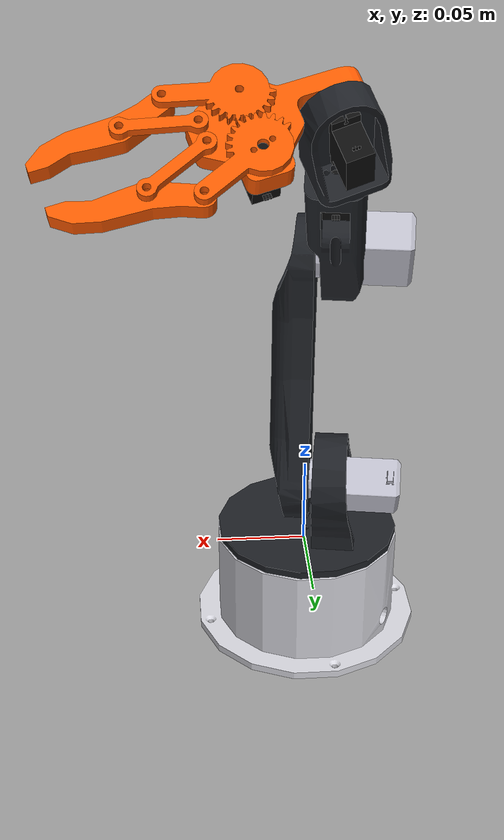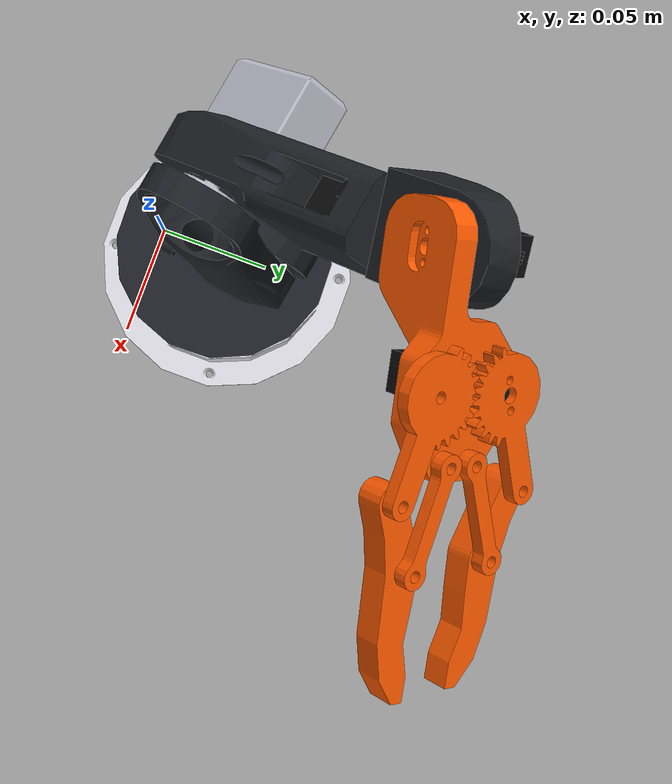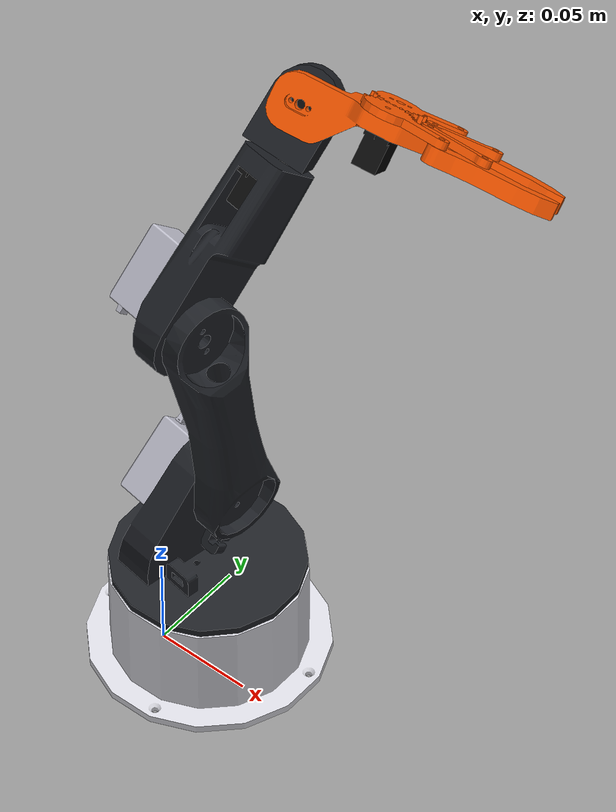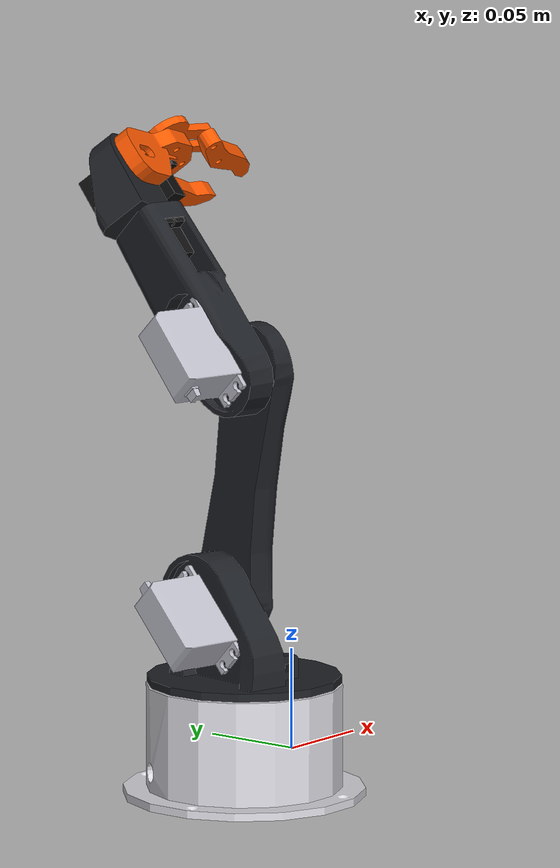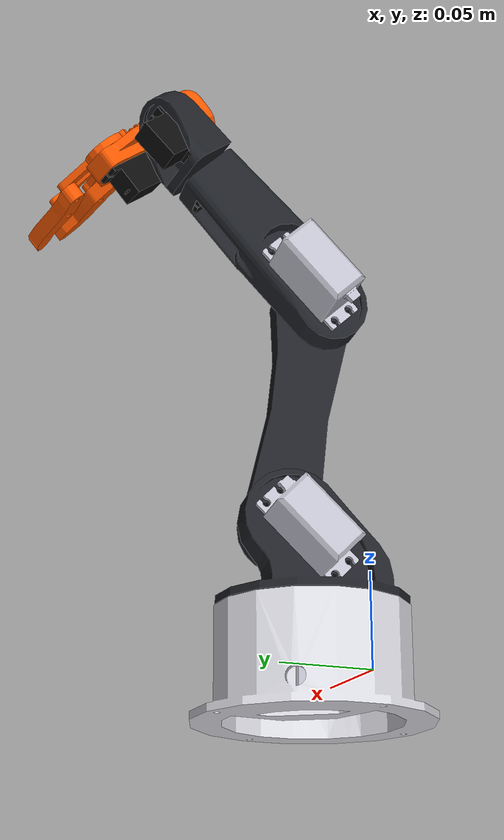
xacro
<?xml version="1.0"?>
<robot xmlns:xacro="http://www.ros.org/wiki/xacro" name="arm_robot">
    <xacro:arg name="initial_positions_file" default="initial_positions.yaml" />

    <!-- Import arm_robot urdf file -->
    <xacro:include filename="$(find robotic_arm_description)/urdf/arm_robot.urdf" />

    <!-- Import control_xacro -->
    <xacro:include filename="arm_robot.ros2_control.xacro" />

    <xacro:arm_robot_ros2_control name="FakeSystem" initial_positions_file="$(arg initial_positions_file)"/>

</robot>

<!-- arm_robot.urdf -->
<!--URDF organized perfectly into sequential subsystems-->
<robot name="arm_robot">

  <!-- 1. ROOT & BASE STRUCTURE                 -->
  <link name="root" />
  <joint name="fixed_node_to_root_joint_0" type="fixed">
          <origin xyz="-0.0386083 0.124405 -0.0639913" rpy="5.80768e-15 4.80471e-17 9.38306e-31" />
          <axis xyz="0 0 1" />
          <parent link="root" />
          <child link="base" />
      </joint>
  <link name="base">
          <inertial>
              <mass value="0.101031" />
              <origin xyz="0.0406816 -0.0928149 0.0584112" rpy="0 -0 0" />
              <inertia ixx="0.000137746" ixy="4.68146e-06" ixz="-3.43353e-06" iyy="0.000141721" iyz="2.2726e-06" izz="0.000218799" />
          </inertial>
          <visual>
              <origin xyz="0 0 0" rpy="0 -0 0" />
              <geometry>
                  <mesh filename="package://robotic_arm_description/meshes/Base.stl" scale="1 1 1" />
              </geometry>
              <material name="0.937255_0.941176_0.945098_0.000000_0.000000">
                  <texture />
                  <color rgba="0.85 0.85 0.88 1" />
              </material>
          </visual>
      </link>

  <!-- 2. WAIST MECHANISM                       -->
  <joint name="fastened_1_4" type="fixed">
          <origin xyz="0.032073 -0.081121 0.0741076" rpy="-5.67254e-17 -2.1343e-15 3.60822e-16" />
          <axis xyz="1.94764e-15 2.81325e-15 1" />
          <parent link="base" />
          <child link="servo_motor_mg996r" />
      </joint>
  <link name="servo_motor_mg996r">
          <inertial>
              <mass value="0.0356215" />
              <origin xyz="0.0168551 -0.0171522 -0.00843485" rpy="0 -0 0" />
              <inertia ixx="7.34339e-06" ixy="1.80523e-06" ixz="2.44862e-07" iyy="8.87594e-06" iyz="-1.62071e-07" izz="6.32908e-06" />
          </inertial>
          <visual>
              <origin xyz="-0.032073 0.081121 -0.0741076" rpy="0 -0 0" />
              <geometry>
                  <mesh filename="package://robotic_arm_description/meshes/Servo Motor MG996R.stl" scale="1 1 1" />
              </geometry>
              <material name="0.352941_0.352941_0.352941_0.000000_0.000000">
                  <texture />
                  <color rgba="0.75 0.75 0.80 1" />
              </material>
          </visual>
      </link>
  <joint name="waist_joint" type="revolute">
          <origin xyz="0.00870625 -0.0117586 0.0186" rpy="-2.445e-15 3.21117e-15 1.23743" />
          <axis xyz="1.38613e-16 3.26282e-15 1" />
          <limit lower="-1.5708" upper="1.5708" effort="10.0" velocity="3.14" />
          <parent link="servo_motor_mg996r" />
          <child link="waist" />
      </joint>
  <link name="waist">
          <inertial>
              <mass value="0.0715763" />
              <origin xyz="0.00027228 0.0065737 0.0172896" rpy="0 -0 0" />
              <inertia ixx="4.79742e-05" ixy="-2.92128e-06" ixz="-5.56079e-06" iyy="6.05465e-05" iyz="-6.47243e-06" izz="5.75198e-05" />
          </inertial>
          <visual>
              <origin xyz="-0.0407793 0.0928796 -0.0931076" rpy="0 -0 0" />
              <geometry>
                  <mesh filename="package://robotic_arm_description/meshes/Waist.stl" scale="1 1 1" />
              </geometry>
              <material name="0.082353_0.376471_0.745098_0.000000_0.000000">
                  <texture />
                  <color rgba="0.12 0.13 0.15 1" />
              </material>
          </visual>
      </link>

  <!-- 3. SHOULDER & UPPER ARM                  -->
  <joint name="fastened_1_3" type="fixed">
          <origin xyz="0.0167974 0.0211208 0.0535347" rpy="3.13405e-16 8.72205e-17 -2.22045e-16" />
          <axis xyz="-0.167932 0.985799 2.8727e-15" />
          <parent link="waist" />
          <child link="servo_motor_mg996r_1" />
      </joint>
  <link name="servo_motor_mg996r_1">
          <inertial>
              <mass value="0.0356215" />
              <origin xyz="-0.0147306 0.00848155 -0.0201682" rpy="0 -0 0" />
              <inertia ixx="7.99071e-06" ixy="4.90695e-07" ixz="-1.96815e-06" iyy="6.44804e-06" iyz="-1.24651e-07" izz="8.10967e-06" />
          </inertial>
          <visual>
              <origin xyz="-0.0574024 0.0717885 -0.146819" rpy="0 -0 0" />
              <geometry>
                  <mesh filename="package://robotic_arm_description/meshes/Servo Motor MG996R_1.stl" scale="1 1 1" />
              </geometry>
              <material name="0.352941_0.352941_0.352941_0.000000_0.000000">
                  <texture />
                  <color rgba="0.75 0.75 0.80 1" />
              </material>
          </visual>
      </link>
  <joint name="shoulder_joint" type="revolute">
          <origin xyz="-0.00337881 -0.017009 -0.0132583" rpy="-0.00880207 0.0516235 -0.000227249" />
          <axis xyz="0.167932 -0.985799 -3.41609e-15" />
          <limit lower="-1.0472" upper="1.0472" effort="10.0" velocity="3.14" />
          <parent link="servo_motor_mg996r_1" />
          <child link="arm_01" />
      </joint>
  <link name="arm_01">
          <inertial>
              <mass value="0.0672108" />
              <origin xyz="-0.0101921 -0.00963787 0.0580444" rpy="0 -0 0" />
              <inertia ixx="0.00010883" ixy="-1.45286e-06" ixz="1.96592e-05" iyy="0.00011741" iyz="3.099e-06" izz="1.35739e-05" />
          </inertial>
          <visual>
              <origin xyz="-0.0540236 0.0887974 -0.133561" rpy="0 -0 0" />
              <geometry>
                  <mesh filename="package://robotic_arm_description/meshes/Arm 01.stl" scale="1 1 1" />
              </geometry>
              <material name="0.082353_0.376471_0.745098_0.000000_0.000000">
                  <texture />
                  <color rgba="0.12 0.13 0.15 1" />
              </material>
          </visual>
      </link>
  <joint name="fastened_1_0" type="fixed">
          <origin xyz="0.00108524 -0.00637058 -2.91434e-16" rpy="-8.67362e-19 -6.93889e-18 2.87856e-17" />
          <axis xyz="-0.167932 0.985799 3.41609e-15" />
          <parent link="arm_01" />
          <child link="arm_01_1" />
      </joint>
  <link name="arm_01_1">
          <inertial>
              <mass value="0.000649482" />
              <origin xyz="-0.0124353 -0.00165935 -0.0229608" rpy="0 -0 0" />
              <inertia ixx="1.18358e-08" ixy="3.56348e-10" ixz="-1.62432e-09" iyy="8.0687e-09" iyz="-8.10603e-10" izz="9.6144e-09" />
          </inertial>
          <visual>
              <origin xyz="-0.0549472 0.0942193 -0.133561" rpy="0 -0 0" />
              <geometry>
                  <mesh filename="package://robotic_arm_description/meshes/Arm 01_1.stl" scale="1 1 1" />
              </geometry>
              <material name="0.082353_0.376471_0.745098_0.000000_0.000000">
                  <texture />
                  <color rgba="0.12 0.13 0.15 1" />
              </material>
          </visual>
      </link>

  <!-- 4. ELBOW & FOREARM                       -->
  <joint name="elbow_joint" type="revolute">
          <origin xyz="-0.0233091 -0.00397075 0.117647" rpy="0.228615 -0.926223 -0.114529" />
          <axis xyz="0.167932 -0.985799 -3.02015e-15" />
          <limit lower="-1.2217" upper="1.2217" effort="10.0" velocity="3.14" />
          <parent link="arm_01" />
          <child link="servo_motor_mg996r_2" />
      </joint>
  <link name="servo_motor_mg996r_2">
          <inertial>
              <mass value="0.0356215" />
              <origin xyz="0.0050744 0.0282888 -0.000612193" rpy="0 -0 0" />
              <inertia ixx="6.26562e-06" ixy="-3.03874e-07" ixz="2.38663e-07" iyy="6.22739e-06" iyz="5.93172e-08" izz="1.00554e-05" />
          </inertial>
          <visual>
              <origin xyz="-0.0307144 0.0927682 -0.251208" rpy="0 -0 0" />
              <geometry>
                  <mesh filename="package://robotic_arm_description/meshes/Servo Motor MG996R_2.stl" scale="1 1 1" />
              </geometry>
              <material name="0.352941_0.352941_0.352941_0.000000_0.000000">
                  <texture />
                  <color rgba="0.75 0.75 0.80 1" />
              </material>
          </visual>
      </link>
  <joint name="fastened_1_2" type="fixed">
          <origin xyz="0.0312856 0.0217629 0.00284453" rpy="-2.85882e-15 4.996e-16 1.36696e-15" />
          <axis xyz="-0.167932 0.985799 2.65368e-15" />
          <parent link="servo_motor_mg996r_2" />
          <child link="arm_02_v3" />
      </joint>
  <link name="arm_02_v3">
          <inertial>
              <mass value="0.0528829" />
              <origin xyz="0.00558634 -0.00472001 -0.00527772" rpy="0 -0 0" />
              <inertia ixx="1.14925e-05" ixy="-8.76515e-06" ixz="2.86344e-06" iyy="5.96286e-05" iyz="5.06883e-07" izz="5.72625e-05" />
          </inertial>
          <visual>
              <origin xyz="-0.0620154 0.0710026 -0.254302" rpy="0 -0 0" />
              <geometry>
                  <mesh filename="package://robotic_arm_description/meshes/Arm 02 v3.stl" scale="1 1 1" />
              </geometry>
              <material name="0.082353_0.376471_0.745098_0.000000_0.000000">
                  <texture />
                  <color rgba="0.12 0.13 0.15 1" />
              </material>
          </visual>
      </link>

  <!-- 5. WRIST MECHANISMS (ROLL & PITCH)       -->
  <joint name="fastened_2_0" type="fixed">
          <origin xyz="0.0445283 0.00200623 -0.0216135" rpy="-1.62386 -1.50802 0.221897" />
          <axis xyz="0 1 0" />
          <parent link="arm_02_v3" />
          <child link="servo_motor" />
      </joint>
  <link name="servo_motor">
          <inertial>
              <mass value="0.00749909" />
              <origin xyz="0.0133719 -0.00553916 -9.90986e-20" rpy="0 -0 0" />
              <inertia ixx="4.81958e-07" ixy="3.76599e-08" ixz="0" iyy="4.49862e-07" iyz="0" izz="7.44587e-07" />
          </inertial>
          <visual>
              <origin xyz="0.0138 -0.01805 0" rpy="0 -0 0" />
              <geometry>
                  <mesh filename="package://robotic_arm_description/meshes/Servo Motor.stl" scale="1 1 1" />
              </geometry>
              <material name="0.301961_0.301961_0.301961_0.000000_0.000000">
                  <texture />
                  <color rgba="0.05 0.05 0.05 1" />
              </material>
          </visual>
      </link>
  <joint name="wrist_roll_joint" type="revolute">
          <origin xyz="0.0087 0.01185 6.76542e-17" rpy="0.240602 -0.0212445 1.39215" />
          <axis xyz="0.983862 0.167602 -0.0626468" />
          <limit lower="-1.5708" upper="1.5708" effort="3.0" velocity="5.0" />
          <parent link="servo_motor" />
          <child link="arm_03" />
      </joint>
  <link name="arm_03">
          <inertial>
              <mass value="0.0173574" />
              <origin xyz="0.0188285 -0.00304012 0.00277914" rpy="0 -0 0" />
              <inertia ixx="2.63992e-06" ixy="1.61309e-07" ixz="1.84822e-07" iyy="5.36981e-06" iyz="2.193e-07" izz="4.13772e-06" />
          </inertial>
          <visual>
              <origin xyz="-0.118727 0.0669209 -0.24043" rpy="0 -0 0" />
              <geometry>
                  <mesh filename="package://robotic_arm_description/meshes/Arm 03.stl" scale="1 1 1" />
              </geometry>
              <material name="0.082353_0.376471_0.745098_0.000000_0.000000">
                  <texture />
                  <color rgba="0.12 0.13 0.15 1" />
              </material>
          </visual>
      </link>
  <joint name="fastened_1_1" type="fixed">
          <origin xyz="0.0100537 -0.00277107 0.00362407" rpy="-0.199177 -0.0636488 -2.97267" />
          <axis xyz="0 1 0" />
          <parent link="arm_03" />
          <child link="servo_motor_2" />
      </joint>
  <link name="servo_motor_2">
          <inertial>
              <mass value="0.00749909" />
              <origin xyz="-0.0142281 -0.00553916 -9.90986e-20" rpy="0 -0 0" />
              <inertia ixx="4.81958e-07" ixy="3.76599e-08" ixz="0" iyy="4.49862e-07" iyz="0" izz="7.44587e-07" />
          </inertial>
          <visual>
              <origin xyz="-0.0138 -0.01805 0" rpy="0 -0 0" />
              <geometry>
                  <mesh filename="package://robotic_arm_description/meshes/Servo Motor.stl" scale="1 1 1" />
              </geometry>
              <material name="0.301961_0.301961_0.301961_0.000000_0.000000">
                  <texture />
                  <color rgba="0.05 0.05 0.05 1" />
              </material>
          </visual>
      </link>
  <joint name="wrist_pitch_joint" type="revolute">
          <origin xyz="-0.0189 0.01185 2.08167e-17" rpy="3.03987 1.68615e-15 -1.5708" />
          <axis xyz="-1 1.23909e-16 0" />
          <limit lower="-1.5708" upper="1.5708" effort="3.0" velocity="5.0" />
          <parent link="servo_motor_2" />
          <child link="gripper_base" />
      </joint>
  <link name="gripper_base">
          <inertial>
              <mass value="0.0230141" />
              <origin xyz="0.0017005 0.00597594 0.0263357" rpy="0 -0 0" />
              <inertia ixx="1.10919e-05" ixy="-4.47723e-07" ixz="-1.84715e-06" iyy="1.24503e-05" iyz="-1.85622e-06" izz="3.57441e-06" />
          </inertial>
          <visual>
              <origin xyz="-0.014 0.009 0.063" rpy="0 -0 0" />
              <geometry>
                  <mesh filename="package://robotic_arm_description/meshes/Gripper Base.stl" scale="1 1 1" />
              </geometry>
              <material name="0.305882_0.596078_0.105882_0.000000_0.000000">
                  <texture />
                  <color rgba="1.00 0.35 0.00 1" />
              </material>
          </visual>
      </link>

  <!-- 6. GRIPPER ASSEMBLY                      -->
  <joint name="fastened_6_0" type="fixed">
          <origin xyz="0.0267 0.0035 0.038" rpy="-3.14159 -5.16254e-15 -3.14159" />
          <axis xyz="0 1 0" />
          <parent link="gripper_base" />
          <child link="servo_motor_1" />
      </joint>
  <link name="servo_motor_1">
          <inertial>
              <mass value="0.00749909" />
              <origin xyz="0.0133204 -0.00553916 1.32483e-19" rpy="0 -0 0" />
              <inertia ixx="4.81958e-07" ixy="3.76599e-08" ixz="0" iyy="4.49862e-07" iyz="0" izz="7.44587e-07" />
          </inertial>
          <visual>
              <origin xyz="0.0137485 -0.01805 2.31581e-19" rpy="0 -0 0" />
              <geometry>
                  <mesh filename="package://robotic_arm_description/meshes/Servo Motor.stl" scale="1 1 1" />
              </geometry>
              <material name="0.301961_0.301961_0.301961_0.000000_0.000000">
                  <texture />
                  <color rgba="0.05 0.05 0.05 1" />
              </material>
          </visual>
      </link>
  <joint name="gripper_joint" type="revolute">
          <origin xyz="-0.001 0.014 0.058" rpy="-3.14159 -1.32304 3.14159" />
          <axis xyz="0 -1 0" />
          <limit lower="-0.5" upper="0.5" effort="3.0" velocity="5.0" />
          <parent link="gripper_base" />
          <child link="grip_link" />
      </joint>
  <link name="grip_link">
          <inertial>
              <mass value="0.00103919" />
              <origin xyz="0.0155 0.002 -2.19769e-19" rpy="0 -0 0" />
              <inertia ixx="4.72589e-09" ixy="0" ixz="0" iyy="1.35856e-07" iyz="0" izz="1.33901e-07" />
          </inertial>
          <visual>
              <origin xyz="0 0 0" rpy="0 -0 0" />
              <geometry>
                  <mesh filename="package://robotic_arm_description/meshes/Grip Link.stl" scale="1 1 1" />
              </geometry>
              <material name="0.305882_0.596078_0.105882_0.000000_0.000000">
                  <texture />
                  <color rgba="1.00 0.35 0.00 1" />
              </material>
          </visual>
      </link>
  <joint name="gripper_right_joint" type="continuous">
          <origin xyz="0.009 0.014 0.058" rpy="-5.14983e-15 -1.17524 3.91123e-15" />
          <axis xyz="0 -1 0" />
          <parent link="gripper_base" />
          <child link="grip_link_1" />
      </joint>
  <link name="grip_link_1">
          <inertial>
              <mass value="0.00103919" />
              <origin xyz="0.0155 0.002 -2.19769e-19" rpy="0 -0 0" />
              <inertia ixx="4.72589e-09" ixy="0" ixz="0" iyy="1.35856e-07" iyz="0" izz="1.33901e-07" />
          </inertial>
          <visual>
              <origin xyz="0 0 0" rpy="0 -0 0" />
              <geometry>
                  <mesh filename="package://robotic_arm_description/meshes/Grip Link.stl" scale="1 1 1" />
              </geometry>
              <material name="0.305882_0.596078_0.105882_0.000000_0.000000">
                  <texture />
                  <color rgba="1.00 0.35 0.00 1" />
              </material>
          </visual>
      </link>
  <joint name="revolute_7_0" type="continuous">
          <origin xyz="0.031 0 -1.52656e-16" rpy="-2.37403 -2.22045e-15 1.5708" />
          <axis xyz="-1 0 0" />
          <parent link="grip_link_1" />
          <child link="gripper" />
      </joint>
  <link name="gripper">
          <inertial>
              <mass value="0.00702205" />
              <origin xyz="-0.00425 0.0045143 -0.00488967" rpy="0 -0 0" />
              <inertia ixx="2.23002e-06" ixy="0" ixz="0" iyy="2.07616e-06" iyz="4.85829e-07" izz="2.3841e-07" />
          </inertial>
          <visual>
              <origin xyz="-0.0085 -0.005 0.027" rpy="0 -0 0" />
              <geometry>
                  <mesh filename="package://robotic_arm_description/meshes/Gripper.stl" scale="1 1 1" />
              </geometry>
              <material name="0.305882_0.596078_0.105882_0.000000_0.000000">
                  <texture />
                  <color rgba="1.00 0.35 0.00 1" />
              </material>
          </visual>
      </link>
  <joint name="revolute_8_0" type="continuous">
          <origin xyz="0.031 -1.66533e-16 -1.52656e-16" rpy="0.933414 -2.60902e-15 -1.5708" />
          <axis xyz="1 0 0" />
          <parent link="grip_link" />
          <child link="gripper_1" />
      </joint>
  <link name="gripper_1">
          <inertial>
              <mass value="0.00702205" />
              <origin xyz="0.00425 0.0045143 -0.00488967" rpy="0 -0 0" />
              <inertia ixx="2.23002e-06" ixy="0" ixz="0" iyy="2.07616e-06" iyz="4.85829e-07" izz="2.3841e-07" />
          </inertial>
          <visual>
              <origin xyz="0 -0.005 0.027" rpy="0 -0 0" />
              <geometry>
                  <mesh filename="package://robotic_arm_description/meshes/Gripper.stl" scale="1 1 1" />
              </geometry>
              <material name="0.305882_0.596078_0.105882_0.000000_0.000000">
                  <texture />
                  <color rgba="1.00 0.35 0.00 1" />
              </material>
          </visual>
      </link>
  <joint name="gear_left_joint" type="continuous">
          <origin xyz="-0.009 0.014 0.038" rpy="-3.14159 -1.309 3.14159" />
          <axis xyz="0 -1 0" />
          <parent link="gripper_base" />
          <child link="gear_1" />
      </joint>
  <link name="gear_1">
          <inertial>
              <mass value="0.00343674" />
              <origin xyz="0.00557875 0.002 -0.000601969" rpy="0 -0 0" />
              <inertia ixx="1.1715e-07" ixy="0" ixz="-1.20439e-08" iyy="5.81859e-07" iyz="0" izz="4.73873e-07" />
          </inertial>
          <visual>
              <origin xyz="0.0101063 0 6.07153e-18" rpy="0 -0 0" />
              <geometry>
                  <mesh filename="package://robotic_arm_description/meshes/Gear 1.stl" scale="1 1 1" />
              </geometry>
              <material name="0.305882_0.596078_0.105882_0.000000_0.000000">
                  <texture />
                  <color rgba="1.00 0.35 0.00 1" />
              </material>
          </visual>
      </link>
  <joint name="gear_right_joint" type="continuous">
          <origin xyz="0.0179 0.014 0.038" rpy="-3.14159 1.309 3.14159" />
          <axis xyz="0 -1 0" />
          <parent link="gripper_base" />
          <child link="gear_2" />
      </joint>
  <link name="gear_2">
          <inertial>
              <mass value="0.00333818" />
              <origin xyz="-0.00569595 0.002 0.00014" rpy="0 -0 0" />
              <inertia ixx="1.2603e-07" ixy="0" ixz="5.81186e-08" iyy="5.80457e-07" iyz="0" izz="4.6333e-07" />
          </inertial>
          <visual>
              <origin xyz="0.0101063 0 6.07153e-18" rpy="0 -0 0" />
              <geometry>
                  <mesh filename="package://robotic_arm_description/meshes/Gear 2.stl" scale="1 1 1" />
              </geometry>
              <material name="0.305882_0.596078_0.105882_0.000000_0.000000">
                  <texture />
                  <color rgba="1.00 0.35 0.00 1" />
              </material>
          </visual>
      </link>

</robot>
